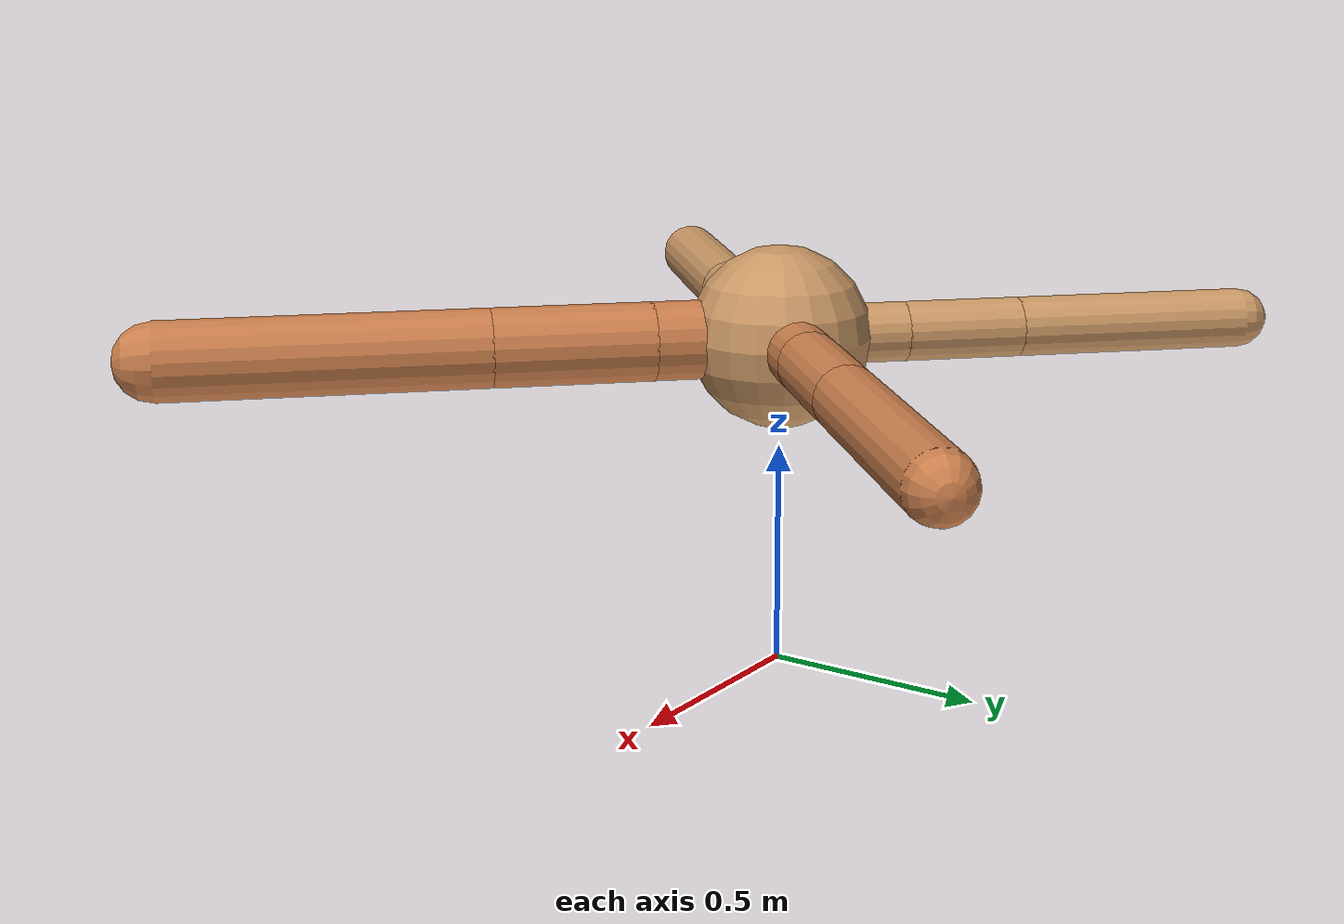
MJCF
<?xml version="1.0" ?>
<mujoco model="ant">

	<compiler angle="degree" coordinate="local" inertiafromgeom="true"/>

	<option integrator="RK4" timestep="0.01"/>

	<custom>

		<numeric data="0.0 0.0 0.55 1.0 0.0 0.0 0.0 0.0 1.0 0.0 -1.0 0.0 -1.0 0.0 1.0" name="init_qpos"/>

	</custom>

	<default>

		<joint armature="1" damping="1" limited="true"/>

		<geom conaffinity="0" condim="3" density="5.0" friction="1.5 0.1 0.1" margin="0.01" rgba="0.8 0.6 0.4 1"/>

	</default>

	<worldbody>

		<body name="torso" pos="0 0 0.75">

			<geom name="torso_geom" pos="0 0 0" size="0.20184105241099634" type="sphere"/>

			<!--joint armature="0" damping="0" limited="false" margin="0.01" name="root" pos="0 0 0" type="free"/-->

			<body name="front_left_leg" pos="0 0 0">

				<geom fromto="0 0 0 0.2 0.2 0" name="aux_1_geom" size="0.0700172853274839" type="capsule" rgba=".8 .5 .3 1"/>

				<body name="aux_1" pos="0.2 0.2 0">

					<joint axis="0 0 1" name="hip_1" pos="0.0 0.0 0.0" range="-40 40" type="hinge"/>

					<geom fromto="0 0 0 0.21985076247514326 0.21985076247514326 0" name="left_leg_geom" size="0.0700172853274839" type="capsule" rgba=".8 .5 .3 1"/>

					<body pos="0.21985076247514326 0.21985076247514326 0" name="front_left_foot">

						<joint axis="-1 1 0" name="ankle_1" pos="0.0 0.0 0.0" range="30 100" type="hinge"/>

						<geom fromto="0 0 0 0.4397015249502865 0.4397015249502865 0" name="left_ankle_geom" size="0.0700172853274839" type="capsule" rgba=".8 .5 .3 1"/>

					</body>

				</body>

			</body>

			<body name="front_right_leg" pos="0 0 0">

				<geom fromto="0 0 0 -0.2 0.2 0" name="aux_2_geom" size="0.06621321891703329" type="capsule"/>

				<body name="aux_2" pos="-0.2 0.2 0">

					<joint axis="0 0 1" name="hip_2" pos="0.0 0.0 0.0" range="-40 40" type="hinge"/>

					<geom fromto="0 0 0 -0.18577334660506392 0.18577334660506392 0" name="right_leg_geom" size="0.06621321891703329" type="capsule"/>

					<body pos="-0.18577334660506392 0.18577334660506392 0" name="front_right_foot">

						<joint axis="1 1 0" name="ankle_2" pos="0.0 0.0 0.0" range="-100 -30" type="hinge"/>

						<geom fromto="0 0 0 -0.37154669321012784 0.37154669321012784 0" name="right_ankle_geom" size="0.06621321891703329" type="capsule"/>

					</body>

				</body>

			</body>

			<body name="left_back_leg" pos="0 0 0">

				<geom fromto="0 0 0 -0.2 -0.2 0" name="aux_3_geom" size="0.07073786175989513" type="capsule"/>

				<body name="aux_3" pos="-0.2 -0.2 0">

					<joint axis="0 0 1" name="hip_3" pos="0.0 0.0 0.0" range="-40 40" type="hinge"/>

					<geom fromto="0 0 0 -0.1882508232903438 -0.1882508232903438 0" name="back_leg_geom" size="0.07073786175989513" type="capsule"/>

					<body pos="-0.1882508232903438 -0.1882508232903438 0" name="left_back_foot">

						<joint axis="-1 1 0" name="ankle_3" pos="0.0 0.0 0.0" range="-100 -30" type="hinge"/>

						<geom fromto="0 0 0 -0.3765016465806876 -0.3765016465806876 0" name="third_ankle_geom" size="0.07073786175989513" type="capsule"/>

					</body>

				</body>

			</body>

			<body name="right_back_leg" pos="0 0 0">

				<geom fromto="0 0 0 0.2 -0.2 0" name="aux_4_geom" size="0.08665499330811739" type="capsule" rgba=".8 .5 .3 1"/>

				<body name="aux_4" pos="0.2 -0.2 0">

					<joint axis="0 0 1" name="hip_4" pos="0.0 0.0 0.0" range="-40 40" type="hinge"/>

					<geom fromto="0 0 0 0.24932811567165195 -0.24932811567165195 0" name="rightback_leg_geom" size="0.08665499330811739" type="capsule" rgba=".8 .5 .3 1"/>

					<body pos="0.24932811567165195 -0.24932811567165195 0" name="right_back_foot">

						<joint axis="1 1 0" name="ankle_4" pos="0.0 0.0 0.0" range="30 100" type="hinge"/>

						<geom fromto="0 0 0 0.4986562313433039 -0.4986562313433039 0" name="fourth_ankle_geom" size="0.08665499330811739" type="capsule" rgba=".8 .5 .3 1"/>

					</body>

				</body>

			</body>

		</body>

	</worldbody>

	<actuator>

		<motor ctrllimited="true" ctrlrange="-1.0 1.0" joint="hip_4" gear="150"/>

		<motor ctrllimited="true" ctrlrange="-1.0 1.0" joint="ankle_4" gear="150"/>

		<motor ctrllimited="true" ctrlrange="-1.0 1.0" joint="hip_1" gear="150"/>

		<motor ctrllimited="true" ctrlrange="-1.0 1.0" joint="ankle_1" gear="150"/>

		<motor ctrllimited="true" ctrlrange="-1.0 1.0" joint="hip_2" gear="150"/>

		<motor ctrllimited="true" ctrlrange="-1.0 1.0" joint="ankle_2" gear="150"/>

		<motor ctrllimited="true" ctrlrange="-1.0 1.0" joint="hip_3" gear="150"/>

		<motor ctrllimited="true" ctrlrange="-1.0 1.0" joint="ankle_3" gear="150"/>

	</actuator>

</mujoco>
